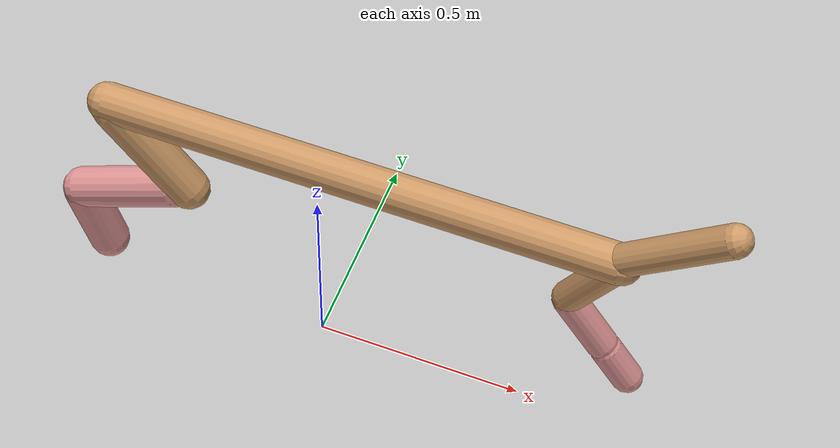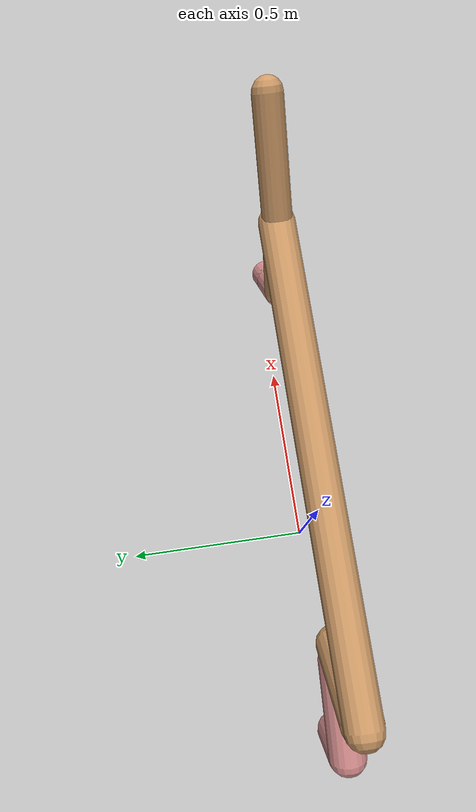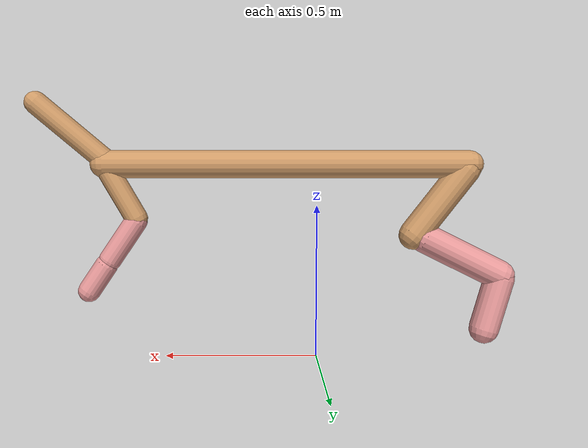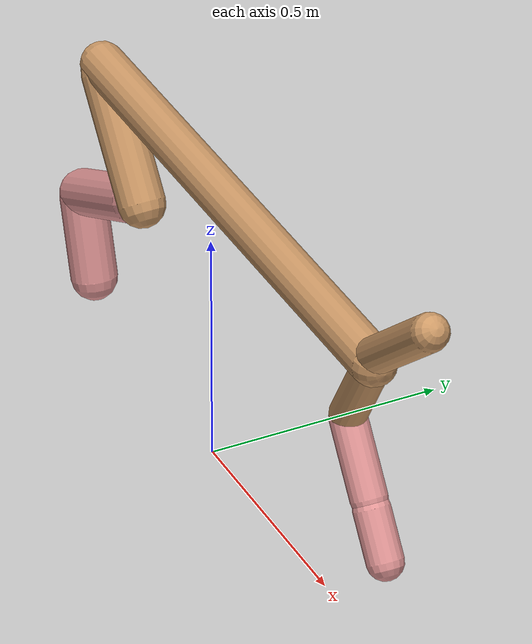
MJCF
<mujoco model="cheetah">
  <compiler angle="radian" coordinate="local" inertiafromgeom="true" settotalmass="14" />
  <default>
    <joint armature=".1" damping=".01" limited="true" solimplimit="0 .8 .03" solreflimit=".02 1" stiffness="8" />
    <geom conaffinity="0" condim="3" contype="1" friction="0.8 .1 .1" rgba="0.8 0.6 .4 1" solimp="0.0 0.8 0.01" solref="0.02 1" />
    <motor ctrllimited="true" ctrlrange="-1 1" />
  </default>
  <size nstack="300000" nuser_geom="1" />
  <option gravity="0 0 -9.81" timestep="0.01" />
  <worldbody>
    <body name="torso" pos="0.0 0.0 0.6367753749106514">
      <joint armature="0" axis="1 0 0" damping="0" limited="false" name="ignorex" pos="0 0 0" stiffness="0" type="slide" />
      <joint armature="0" axis="0 0 1" damping="0" limited="false" name="ignorez" pos="0 0 0" stiffness="0" type="slide" />
      <joint armature="0" axis="0 1 0" damping="0" limited="false" name="ignorey" pos="0 0 0" stiffness="0" type="hinge" />
      <geom fromto="-0.5 0.0 0.0 0.6920880102514357 0.0 0.0" name="torso" size="0.04576408308647701" type="capsule" />
      <geom axisangle="0 1 0 .87" name="head" pos="0.7920880102514357 0.0 0.1" size="0.03743876403244058 0.15" type="capsule" />

      <body name="bthigh" pos="-.5 0 0">
        <joint axis="0 1 0" damping="6" name="bthigh" pos="0 0 0" range="-.52 1.05" stiffness="240" type="hinge" />
        <geom axisangle="0 1 0 -3.8" name="bthigh" pos="0.09526307926371935 0.0 -0.12384200304283516" size="0.04929457661327096 0.13723087234071563" type="capsule" />
        <body name="bshin" pos="0.1505261585274387 0.0 -0.2376840060856703">
          <joint axis="0 1 0" damping="4.5" name="bshin" pos="0 0 0" range="-.785 .785" stiffness="180" type="hinge" />
          <geom axisangle="0 1 0 -2.03" name="bshin" pos="-0.13281146307364128 0.0 -0.06640573153682064" rgba="0.9 0.6 0.6 1" size="0.04929457661327096 0.14196297138694722" type="capsule" />
          <body name="bfoot" pos="-0.26562292614728256 0.0 -0.13281146307364128">
            <joint axis="0 1 0" damping="3" name="bfoot" pos="0 0 0" range="-.4 .785" stiffness="120" type="hinge" />
            <geom axisangle="0 1 0 -.27" name="bfoot" pos="0.028511855533086328 0.0 -0.09218833289031246" rgba="0.9 0.6 0.6 1" size="0.04929457661327096 0.08896346206915359" type="capsule" />
            <inertial mass="10" />
          </body>
        </body>
      </body>
      <body name="fthigh" pos="0.6920880102514357 0.0 0.0">
        <joint axis="0 1 0" damping="4.5" name="fthigh" pos="0 0 0" range="-1.5 0.8" stiffness="180" type="hinge" />
        <geom axisangle="0 1 0 .52" name="fthigh" pos="-0.052889064292906345 0.0 -0.090666967359268" size="0.037130017502229336 0.09904104058316067" type="capsule" />
        <body name="fshin" pos="-0.10577812858581269 0.0 -0.181333934718536">
          <joint axis="0 1 0" damping="3" name="fshin" pos="0 0 0" range="-1.2 1.1" stiffness="120" type="hinge" />
          <geom axisangle="0 1 0 -.6" name="fshin" pos="0.049153677477924845 0.0 -0.06805893804635747" rgba="0.9 0.6 0.6 1" size="0.037130017502229336 0.07893496467530098" type="capsule" />
          <body name="ffoot" pos="0.09830735495584969 0.0 -0.13611787609271495">
            <joint axis="0 1 0" damping="1.5" name="ffoot" pos="0 0 0" range="-3.1 -0.3" stiffness="60" type="hinge" />
            <geom axisangle="0 1 0 -.6" name="ffoot" pos="0.03533496573801953 0.0 -0.05496550225914149" rgba="0.9 0.6 0.6 1" size="0.037130017502229336 0.052126863464821406" type="capsule" />
            <inertial mass="10" />
          </body>
        </body>
      </body>
    </body>
  </worldbody>
  <actuator>
    <motor gear="120" joint="bthigh" name="bthigh" />
    <motor gear="90" joint="bshin" name="bshin" />
    <motor gear="60" joint="bfoot" name="bfoot" />
    <motor gear="120" joint="fthigh" name="fthigh" />
    <motor gear="60" joint="fshin" name="fshin" />
    <motor gear="30" joint="ffoot" name="ffoot" />
  </actuator>
</mujoco>
